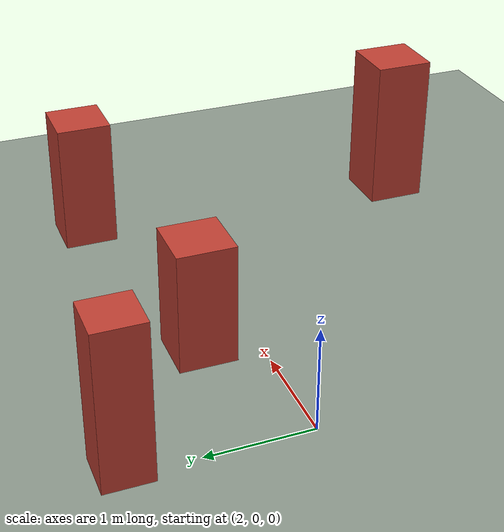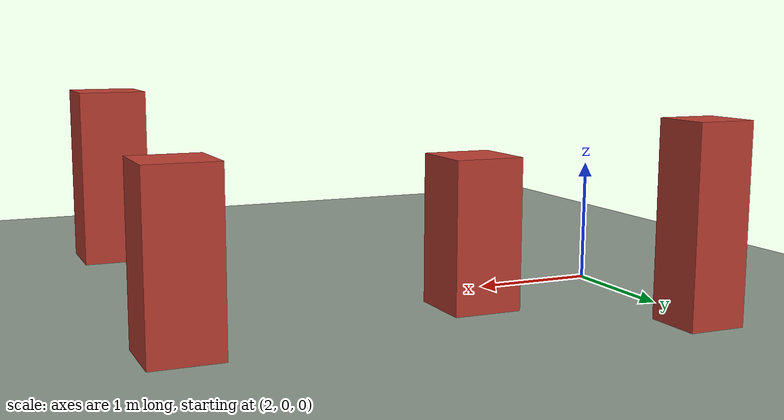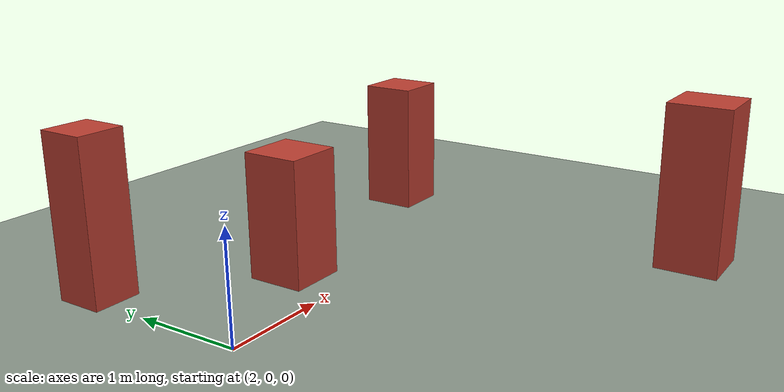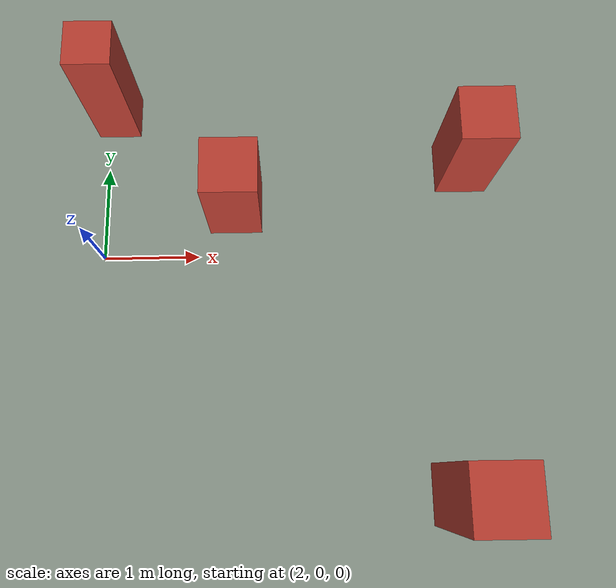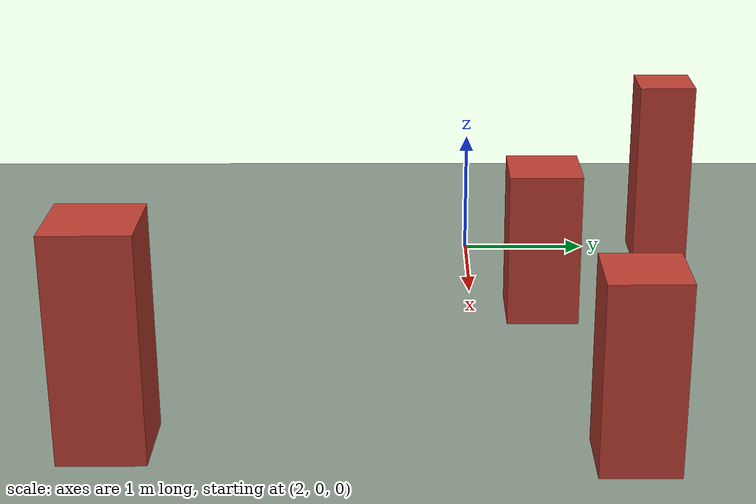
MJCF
<mujoco model="map">
  <compiler angle="radian"/>

  <worldbody>
    <geom name="ground" size="30 30 0.1" type="plane" group="1" friction="1.2" rgba="0.55 0.6 0.55 1"/>
    <geom name="obstacle_0" size="0.267988 0.267988 0.659621" pos="5.82396 0.976792 0.659621" type="box" group="1" rgba="0.75 0.25 0.2 1"/>
    <geom name="obstacle_1" size="0.275745 0.275745 0.593334" pos="3.39197 0.544434 0.593334" type="box" group="1" rgba="0.75 0.25 0.2 1"/>
    <geom name="obstacle_2" size="0.226558 0.226558 0.752956" pos="2.09959 1.63859 0.752956" type="box" group="1" rgba="0.75 0.25 0.2 1"/>
    <geom name="obstacle_3" size="0.295737 0.295737 0.785858" pos="5.62617 -2.45517 0.785858" type="box" group="1" rgba="0.75 0.25 0.2 1"/>
  </worldbody>
</mujoco>
